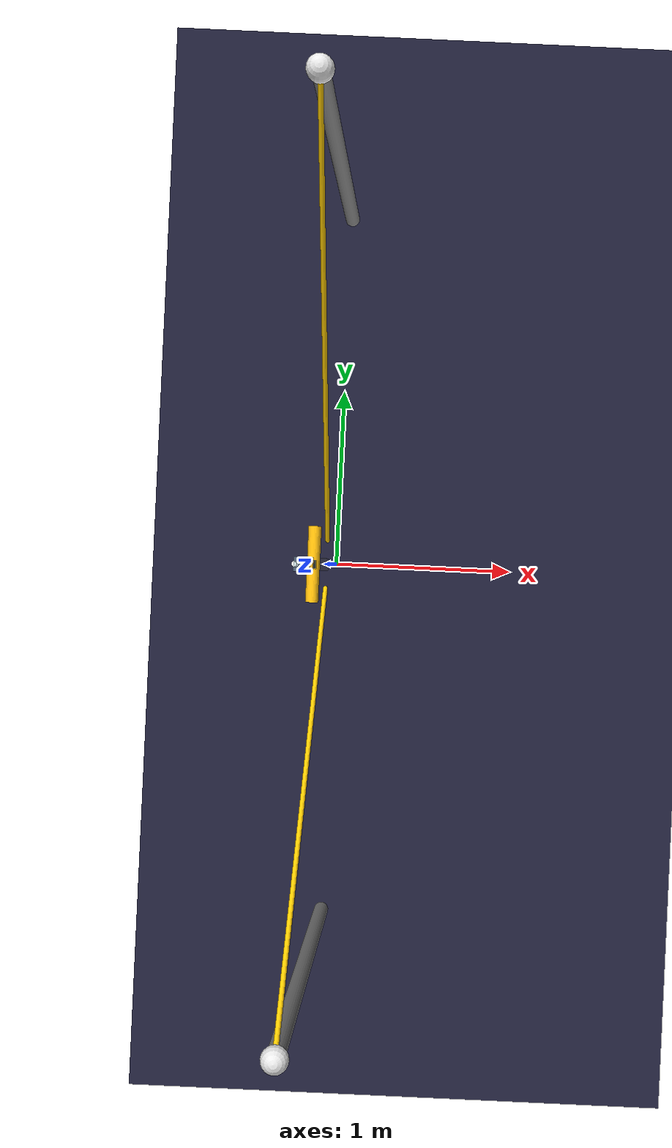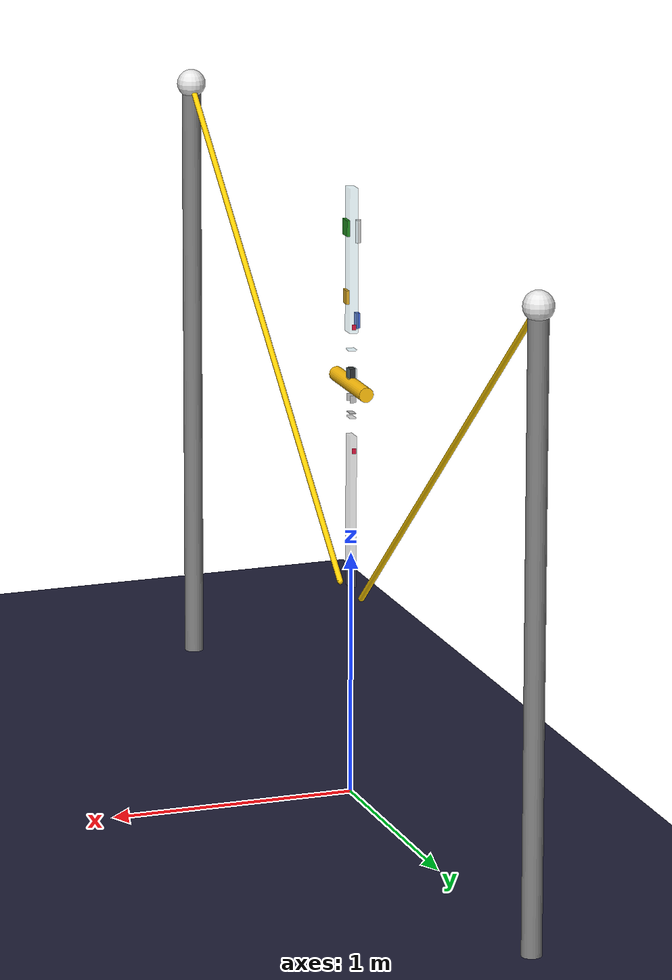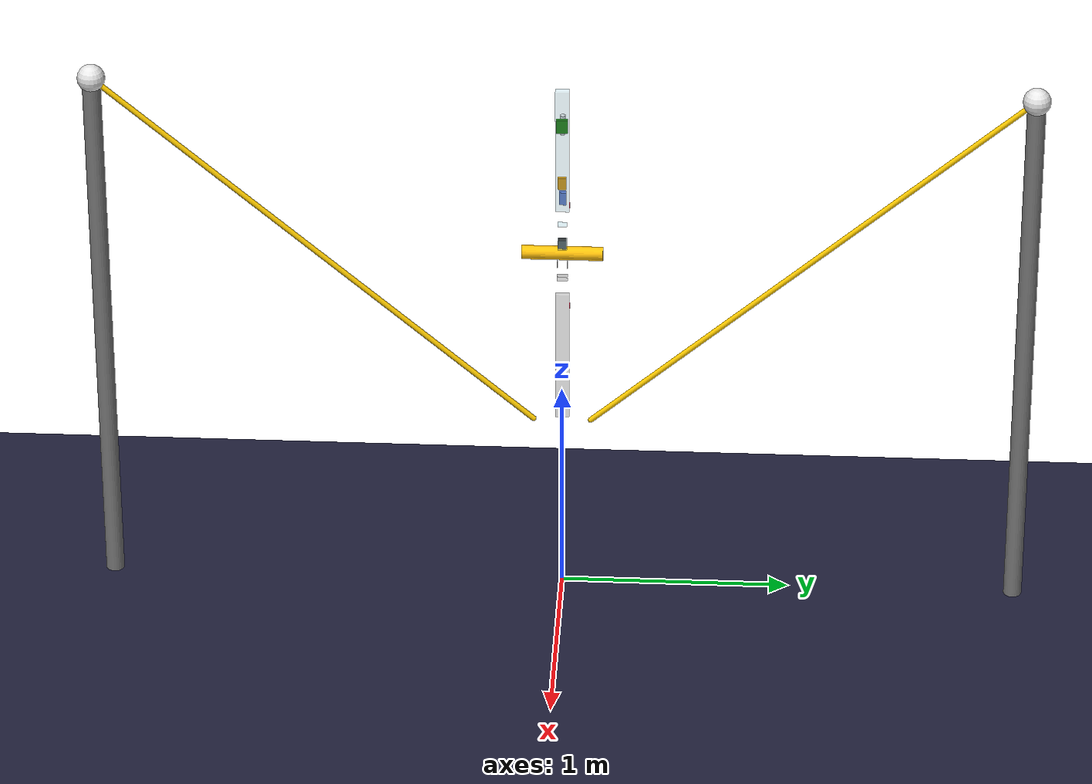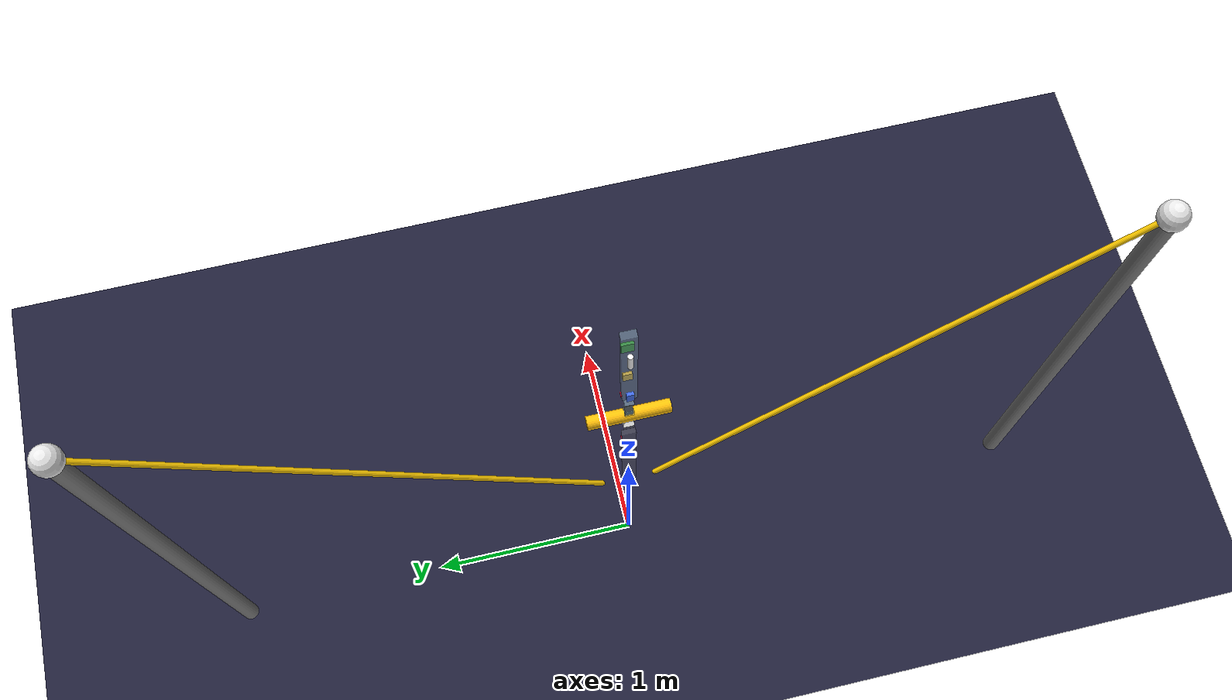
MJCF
<mujoco model="slackline_v11">
  <compiler angle="radian" autolimits="true"/>
  <option timestep="0.001" gravity="0 0 -9.81" integrator="Euler"
          solver="Newton" iterations="50" tolerance="1e-10"/>
  <default>
    <joint armature="0.001"/>
    <geom condim="3" friction="1.0 0.5 0.1"/>
  </default>

  <worldbody>
    <!-- Ground -->
    <geom name="ground" type="plane" size="10 10 0.1" rgba="0.12 0.12 0.22 1"/>

    <!-- Pole A (origin = top, where rope ties) -->
    <body name="pole_a" pos="0 2.0 2.5">
      <geom name="pole_a_cyl" type="cylinder" size="0.04 1.25"
            pos="0 0 -1.25" rgba="0.5 0.5 0.5 1"
            contype="0" conaffinity="0"/>
      <geom name="pole_a_cap" type="sphere" size="0.06"
            rgba="0.9 0.9 0.9 1" contype="0" conaffinity="0"/>
    </body>

    <!-- Pole B (origin = top, where rope ties) -->
    <body name="pole_b" pos="0 -2.0 2.5">
      <geom name="pole_b_cyl" type="cylinder" size="0.04 1.25"
            pos="0 0 -1.25" rgba="0.5 0.5 0.5 1"
            contype="0" conaffinity="0"/>
      <geom name="pole_b_cap" type="sphere" size="0.06"
            rgba="0.9 0.9 0.9 1" contype="0" conaffinity="0"/>
    </body>

    <!-- ===== Kinematic chain: rope_a -> lower -> upper + rope_b ===== -->

    <!-- Rope A: joint at pole_a_top, capsule hangs down to lower_body -->
    <body name="rope_a" pos="0 2.0 2.5">
      <joint name="ra_x" type="hinge" axis="1 0 0" damping="0.05"/>
            <joint name="ra_y" type="hinge" axis="0 1 0" damping="0.05"/>
            <joint name="ra_z" type="hinge" axis="0 0 1" damping="0.05"/>
      <geom name="rope_a_geom" type="capsule" size="0.012"
            fromto="0 0 0  0 -1.875 -1.653594569415369"
            rgba="1.0 0.8 0.0 1" mass="0.05"
            contype="0" conaffinity="0"/>
      <inertial pos="0 -0.9375 -0.8267972847076845" mass="0.05"
                diaginertia="0.02604167 0.02604167 0.00000360"/>

      <!-- Lower body: joint at rope_a endpoint (= foot's +y edge) -->
      <body name="lower_body" pos="0 -1.875 -1.653594569415369">
        <joint name="ankle" type="hinge" axis="0 1 0" damping="1.0"/>
        <geom name="bkt_base" type="box" size="0.01200 0.02300 0.00100" pos="0 -0.12500 0.73543" rgba="0.75 0.75 0.75 1" contype="0" conaffinity="0"/>
        <geom name="bkt_f" type="box" size="0.01200 0.00100 0.01500" pos="0 -0.10300 0.79457" rgba="0.75 0.75 0.75 1" contype="0" conaffinity="0"/>
        <geom name="bkt_b" type="box" size="0.01200 0.00100 0.01500" pos="0 -0.14700 0.79457" rgba="0.75 0.75 0.75 1" contype="0" conaffinity="0"/>
        <geom name="lf_top" type="box" size="0.01200 0.02300 0.00200" pos="0 -0.12500 0.71696" rgba="0.47 0.47 0.47 0.4" contype="0" conaffinity="0"/>
        <geom name="lf_col" type="box" size="0.01200 0.03000 0.31228" pos="0 -0.12500 0.33076" rgba="0.47 0.47 0.47 0.35" contype="0" conaffinity="0"/>
        <geom name="mpu_lo" type="box" size="0.00800 0.00150 0.01050" pos="0 -0.09350 0.58391" rgba="0.86 0.08 0.24 1" contype="0" conaffinity="0"/>
        <inertial pos="0 -0.125 0.425" mass="30.0"
                  diaginertia="1.962500 1.887250 0.237250"/>

        <!-- Upper body: hip joint at top-center of lower body -->
        <body name="upper_body" pos="0 -0.125 0.85">
          <joint name="hip" type="hinge" axis="0 1 0" damping="0.5"/>
          <geom name="motor" type="box" size="0.01235 0.01750 0.02260" pos="0 0 0.04440" rgba="0.18 0.20 0.21 1" contype="0" conaffinity="0"/>
          <geom name="horn_f" type="cylinder" size="0.01000 0.00150" pos="0 0.02000 0" euler="1.5708 0 0" rgba="1.0 0.84 0.0 1" contype="0" conaffinity="0"/>
          <geom name="horn_b" type="cylinder" size="0.01000 0.00150" pos="0 -0.02000 0" euler="1.5708 0 0" rgba="1.0 0.84 0.0 1" contype="0" conaffinity="0"/>
          <geom name="uf_l" type="box" size="0.00200 0.01950 0.02260" pos="0.01435 0 0.04440" rgba="0.68 0.85 0.90 0.4" contype="0" conaffinity="0"/>
          <geom name="uf_r" type="box" size="0.00200 0.01950 0.02260" pos="-0.01435 0 0.04440" rgba="0.68 0.85 0.90 0.4" contype="0" conaffinity="0"/>
          <geom name="uf_top" type="box" size="0.01635 0.01950 0.00200" pos="0 0 0.14280" rgba="0.68 0.85 0.90 0.4" contype="0" conaffinity="0"/>
          <geom name="uf_col" type="box" size="0.01635 0.03000 0.29260" pos="0 0 0.50740" rgba="0.68 0.85 0.90 0.35" contype="0" conaffinity="0"/>
          <geom name="esp32" type="box" size="0.00600 0.02500 0.03250" pos="0.02235 0 0.64000" rgba="0.13 0.55 0.13 1" contype="0" conaffinity="0"/>
          <geom name="urt1" type="box" size="0.00600 0.01850 0.02800" pos="0.02235 0 0.36000" rgba="0.85 0.65 0.13 1" contype="0" conaffinity="0"/>
          <geom name="powerbank" type="cylinder" size="0.01100 0.04600" pos="-0.02735 0 0.62000" rgba="0.95 0.95 0.95 1" contype="0" conaffinity="0"/>
          <geom name="lipo" type="box" size="0.00750 0.01500 0.03050" pos="-0.02385 0 0.26000" rgba="0.25 0.41 0.88 1" contype="0" conaffinity="0"/>
          <geom name="mpu_up" type="box" size="0.00800 0.00150 0.01050" pos="0 0.03150 0.24000" rgba="0.86 0.08 0.24 1" contype="0" conaffinity="0"/>
          <inertial pos="0 0 0.4" mass="40.0"
                    diaginertia="2.341667 2.433333 0.508333"/>
          <!-- Hip visual marker -->
          <geom name="hip_marker" type="cylinder"
                size="0.03 0.175" euler="1.5708 0 0"
                rgba="1.0 0.75 0.04 1" contype="0" conaffinity="0"/>
        </body>

        <!-- Rope B: joint at lower_body's -y edge (= foot's -y edge) -->
        <body name="rope_b" pos="0 -0.25 0">
          <joint name="rb_x" type="hinge" axis="1 0 0" damping="0.05"/>
            <joint name="rb_y" type="hinge" axis="0 1 0" damping="0.05"/>
            <joint name="rb_z" type="hinge" axis="0 0 1" damping="0.05"/>
          <geom name="rope_b_geom" type="capsule" size="0.012"
                fromto="0 0 0  0 -1.875 1.653594569415369"
                rgba="1.0 0.8 0.0 1" mass="0.05"
                contype="0" conaffinity="0"/>
          <inertial pos="0 -0.9375 0.8267972847076845" mass="0.05"
                    diaginertia="0.02604167 0.02604167 0.00000360"/>
        </body>
      </body>
    </body>
  </worldbody>

  <!-- Rope B tip connects to Pole B top -->
  <equality>
    <connect body1="rope_b" anchor="0 -1.875 1.653594569415369"
             body2="pole_b"
             solref="0.005 1"/>
  </equality>

  <!-- Hip torque actuator -->
  <actuator>
    <motor name="hip_torque" joint="hip" gear="1"
           ctrlrange="-1500.0 1500.0"/>
  </actuator>

  <!-- Sensors -->
  <sensor>
    <jointpos name="s_ankle_pos" joint="ankle"/>
    <jointvel name="s_ankle_vel" joint="ankle"/>
    <jointpos name="s_hip_pos" joint="hip"/>
    <jointvel name="s_hip_vel" joint="hip"/>
    <framepos name="s_foot_pos" objtype="body" objname="lower_body"/>
    <framequat name="s_foot_quat" objtype="body" objname="lower_body"/>
    <frameangvel name="s_foot_angvel" objtype="body" objname="lower_body"/>
    <subtreecom name="s_robot_com" body="lower_body"/>
  </sensor>

  <!-- Keyframe: initial pose for Backspace reset -->
  <!-- qpos: rope_a joints, ankle, hip, rope_b joints -->
  <keyframe>
    <key name="init" qpos="0.000000 0.000000 0.000000 0.000000 0.148353 0.000000 0.000000 0.000000"/>
  </keyframe>
</mujoco>
